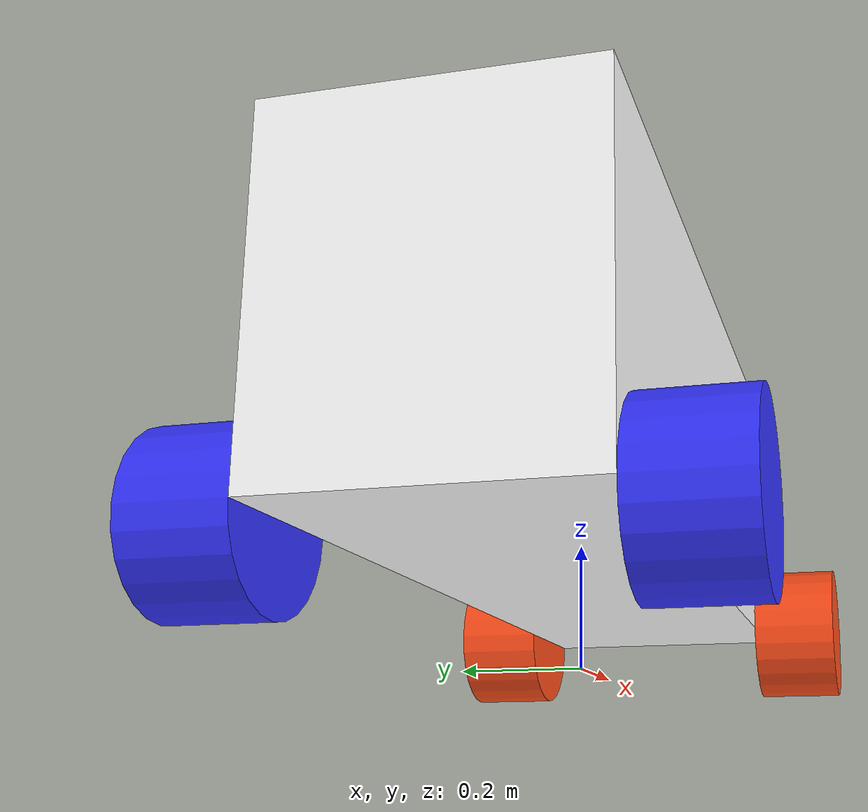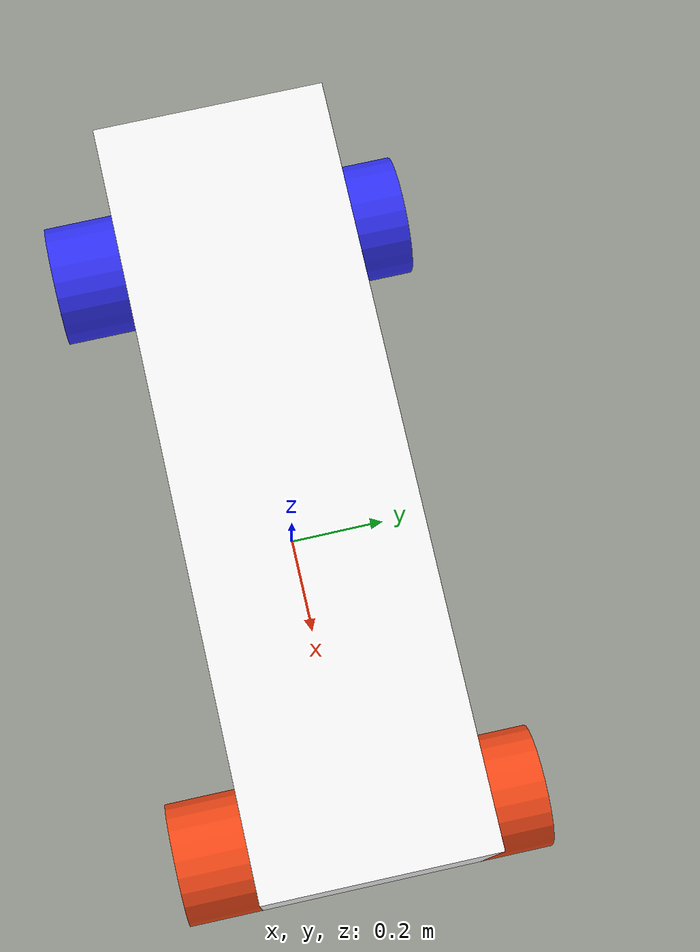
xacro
<?xml version="1.0"?>
<robot xmlns:xacro="http://www.ros.org/wiki/xacro">

    <xacro:include filename="$(find luna_bot)/urdf/colors.xacro"/>

    <!-- COLOR MACROS -->
    <material name="white">
        <color rgba="1 1 1 1"/>
    </material>

    <material name="orange">
        <color rgba="1 0.3 0.1 1"/>
    </material>

    <material name="blue">
        <color rgba="0.2 0.2 1 1"/>
    </material>

    <material name="black">
        <color rgba="0 0 0 1"/>
    </material>

    <!-- CHASSIS MACROS -->
    <xacro:property name="chassis_l" value="1.5" />
    <xacro:property name="chassis_w" value="0.45" />
    <xacro:property name="chassis_h" value=".5" />
    <xacro:property name="chassis_m" value="70" />
    <!-- WHEEL MACROS -->
    <xacro:property name="wheel_len" value="0.15" />
    <xacro:property name="wheel_rad" value="0.125" />
    <xacro:property name="wheel_m" value="2.5" />

    <link name="base_link">
    </link>

    <joint name="chassis_joint" type="fixed">
        <parent link="base_link"/>
        <child link="chassis"/>
        <origin xyz="0 0 0"/>
    </joint>

    <link name="chassis">
        <visual>
            <origin xyz="0 0 ${(chassis_h/2) + (wheel_rad)}" rpy="0 0 0"/>
            <geometry>
                <box size="${chassis_l} ${chassis_w} ${chassis_h}"/>
            </geometry>
            <material name="white"/>
        </visual>
        <collision>
            <origin xyz="0 0 ${(chassis_h/2) + (wheel_rad)}" rpy="0 0 0"/>
            <geometry>
                <box size="${chassis_l} ${chassis_w} ${chassis_h}"/>
            </geometry>
        </collision>
        <inertial>
            <mass value="70"/>
            <inertia ixx="${(1/12) * chassis_m * (chassis_h*chassis_h + chassis_l*chassis_l)}" ixy="0.0" ixz="0.0" iyy="${(1/12) * chassis_m * (chassis_h*chassis_h + chassis_w*chassis_w)}" iyz="0.0" izz="${(1/12) * chassis_m * (chassis_l*chassis_l + chassis_w*chassis_w)}"/>
        </inertial>
    </link>

    <!-- BACK LEFT WHEEL -->

    <joint name="back_left_wheel_joint" type="continuous">
        <parent link="base_link"/>
        <child link="back_left_wheel"/>
        <origin xyz="-${chassis_l/2 - wheel_rad} -${chassis_w/2 + wheel_len/2} ${wheel_rad}" rpy="-${pi/2} 0 0"/>
        <axis xyz="0 0 1"/>
    </joint>

    <link name="back_left_wheel">
        <visual>
            <geometry>
                <cylinder length="${wheel_len}" radius="${wheel_rad}" />
            </geometry>
            <material name="blue"/>
        </visual>
        <collision>
            <geometry>
                <cylinder length="${wheel_len}" radius="${wheel_rad}" />
            </geometry>
        </collision>
        <inertial>
            <mass value="2.5"/>
            <inertia ixx="${(1/12) * wheel_m * (3 * wheel_rad * wheel_rad + wheel_len*wheel_len)}" ixy="0.0" ixz="0.0" iyy="${(1/12) * wheel_m * (3 * wheel_rad * wheel_rad + wheel_len*wheel_len)}" iyz="0.0" izz="${(1/2) * wheel_m * (wheel_rad*wheel_rad)}"/>
        </inertial>

    </link>

    <!-- FRONT LEFT WHEEL -->

    <joint name="front_left_wheel_joint" type="continuous">
        <parent link="base_link"/>
        <child link="front_left_wheel"/>
        <origin xyz="${chassis_l/2 - wheel_rad} -${chassis_w/2 + wheel_len/2} ${wheel_rad}" rpy="-${pi/2} 0 0"/>
        <axis xyz="0 0 1"/>
    </joint>

    <link name="front_left_wheel">
        <visual>
            <geometry>
                <cylinder length="${wheel_len}" radius="${wheel_rad}" />
            </geometry>
            <material name="orange"/>
        </visual>
        <collision>
            <geometry>
                <cylinder length="${wheel_len}" radius="${wheel_rad}" />
            </geometry>
        </collision>
        <inertial>
            <mass value="2.5"/>
            <inertia ixx="${(1/12) * wheel_m * (3 * wheel_rad * wheel_rad + wheel_len*wheel_len)}" ixy="0.0" ixz="0.0" iyy="${(1/12) * wheel_m * (3 * wheel_rad * wheel_rad + wheel_len*wheel_len)}" iyz="0.0" izz="${(1/2) * wheel_m * (wheel_rad*wheel_rad)}"/>
        </inertial>
    </link>

    <!-- BACK RIGHT WHEEL -->

    <joint name="back_right_wheel_joint" type="continuous">
        <parent link="base_link"/>
        <child link="back_right_wheel"/>
        <origin xyz="-${chassis_l/2 - wheel_rad} ${chassis_w/2 + wheel_len/2} ${wheel_rad}" rpy="${pi/2} 0 0"/>
        <axis xyz="0 0 1"/>
    </joint>

    <link name="back_right_wheel">
        <visual>
            <geometry>
                <cylinder length="${wheel_len}" radius="${wheel_rad}" />
            </geometry>
            <material name="blue"/>
        </visual>
        <collision>
            <geometry>
                <cylinder length="${wheel_len}" radius="${wheel_rad}" />
            </geometry>
        </collision>
        <inertial>
            <mass value="2.5"/>
            <inertia ixx="${(1/12) * wheel_m * (3 * wheel_rad * wheel_rad + wheel_len*wheel_len)}" ixy="0.0" ixz="0.0" iyy="${(1/12) * wheel_m * (3 * wheel_rad * wheel_rad + wheel_len*wheel_len)}" iyz="0.0" izz="${(1/2) * wheel_m * (wheel_rad*wheel_rad)}"/>
        </inertial>
    </link>

    <!-- FRONT RIGHT WHEEL -->

    <joint name="front_right_wheel_joint" type="continuous">
        <parent link="base_link"/>
        <child link="front_right_wheel"/>
        <origin xyz="${chassis_l/2 - wheel_rad} ${chassis_w/2 + wheel_len/2} ${wheel_rad}" rpy="${pi/2} 0 0"/>
        <axis xyz="0 0 1"/>
    </joint>

    <link name="front_right_wheel">
        <visual>
            <geometry>
                <cylinder length="${wheel_len}" radius="${wheel_rad}" />
            </geometry>
            <material name="orange"/>
        </visual>
        <collision>
            <geometry>
                <cylinder length="${wheel_len}" radius="${wheel_rad}" />
            </geometry>
        </collision>
        <inertial>
            <mass value="2.5"/>
            <inertia ixx="${(1/12) * wheel_m * (3 * wheel_rad * wheel_rad + wheel_len*wheel_len)}" ixy="0.0" ixz="0.0" iyy="${(1/12) * wheel_m * (3 * wheel_rad * wheel_rad + wheel_len*wheel_len)}" iyz="0.0" izz="${(1/2) * wheel_m * (wheel_rad*wheel_rad)}"/>
        </inertial>
    </link>

</robot>
